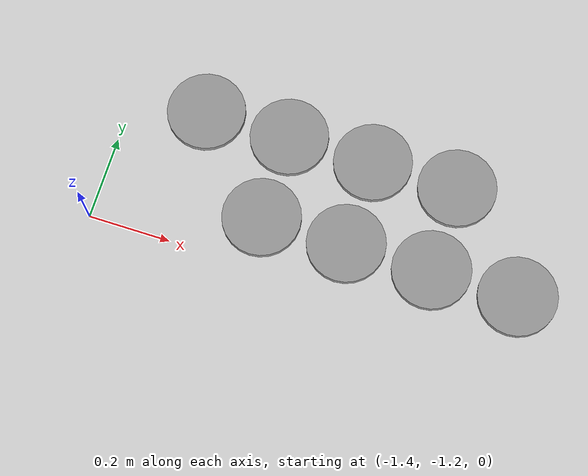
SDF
<sdf version="1.6">
 <world name="default">
  <model name="unit_cylinder_clone_593">
   <pose>-1.22 -0.87 0.008111 0 0 0</pose>
   <link name="link">
    <inertial>
     <mass>1</mass>
     <inertia><ixx>0.145833</ixx><ixy>0</ixy><ixz>0</ixz><iyy>0.145833</iyy><iyz>0</iyz><izz>0.125</izz></inertia>
    </inertial>
    <collision name="collision">
     <geometry><cylinder><radius>0.0950718</radius><length>0.0162339</length></cylinder></geometry>
     <max_contacts>5</max_contacts>
    </collision>
    <visual name="visual">
     <geometry><cylinder><radius>0.0950718</radius><length>0.0162339</length></cylinder></geometry>
     <material>
      <script><name>Gazebo/Grey</name><uri>file://media/materials/scripts/gazebo.material</uri></script>
     </material>
    </visual>
   </link>
  </model>
  <model name="unit_cylinder_clone_597">
   <pose>-1.01 -1.08 0.008111 0 0 0</pose>
   <link name="link">
    <inertial>
     <mass>1</mass>
     <inertia><ixx>0.145833</ixx><ixy>0</ixy><ixz>0</ixz><iyy>0.145833</iyy><iyz>0</iyz><izz>0.125</izz></inertia>
    </inertial>
    <collision name="collision">
     <geometry><cylinder><radius>0.0950718</radius><length>0.0162339</length></cylinder></geometry>
     <max_contacts>5</max_contacts>
    </collision>
    <visual name="visual">
     <geometry><cylinder><radius>0.0950718</radius><length>0.0162339</length></cylinder></geometry>
     <material>
      <script><name>Gazebo/Grey</name><uri>file://media/materials/scripts/gazebo.material</uri></script>
     </material>
    </visual>
   </link>
  </model>
  <model name="unit_cylinder_clone_598">
   <pose>-1.01 -0.87 0.008111 0 0 0</pose>
   <link name="link">
    <inertial>
     <mass>1</mass>
     <inertia><ixx>0.145833</ixx><ixy>0</ixy><ixz>0</ixz><iyy>0.145833</iyy><iyz>0</iyz><izz>0.125</izz></inertia>
    </inertial>
    <collision name="collision">
     <geometry><cylinder><radius>0.0950718</radius><length>0.0162339</length></cylinder></geometry>
     <max_contacts>5</max_contacts>
    </collision>
    <visual name="visual">
     <geometry><cylinder><radius>0.0950718</radius><length>0.0162339</length></cylinder></geometry>
     <material>
      <script><name>Gazebo/Grey</name><uri>file://media/materials/scripts/gazebo.material</uri></script>
     </material>
    </visual>
   </link>
  </model>
  <model name="unit_cylinder_clone_602">
   <pose>-0.8 -1.08 0.008111 0 0 0</pose>
   <link name="link">
    <inertial>
     <mass>1</mass>
     <inertia><ixx>0.145833</ixx><ixy>0</ixy><ixz>0</ixz><iyy>0.145833</iyy><iyz>0</iyz><izz>0.125</izz></inertia>
    </inertial>
    <collision name="collision">
     <geometry><cylinder><radius>0.0950718</radius><length>0.0162339</length></cylinder></geometry>
     <max_contacts>5</max_contacts>
    </collision>
    <visual name="visual">
     <geometry><cylinder><radius>0.0950718</radius><length>0.0162339</length></cylinder></geometry>
     <material>
      <script><name>Gazebo/Grey</name><uri>file://media/materials/scripts/gazebo.material</uri></script>
     </material>
    </visual>
   </link>
  </model>
  <model name="unit_cylinder_clone_603">
   <pose>-0.8 -0.87 0.008111 0 0 0</pose>
   <link name="link">
    <inertial>
     <mass>1</mass>
     <inertia><ixx>0.145833</ixx><ixy>0</ixy><ixz>0</ixz><iyy>0.145833</iyy><iyz>0</iyz><izz>0.125</izz></inertia>
    </inertial>
    <collision name="collision">
     <geometry><cylinder><radius>0.0950718</radius><length>0.0162339</length></cylinder></geometry>
     <max_contacts>5</max_contacts>
    </collision>
    <visual name="visual">
     <geometry><cylinder><radius>0.0950718</radius><length>0.0162339</length></cylinder></geometry>
     <material>
      <script><name>Gazebo/Grey</name><uri>file://media/materials/scripts/gazebo.material</uri></script>
     </material>
    </visual>
   </link>
  </model>
  <model name="unit_cylinder_clone_607">
   <pose>-0.59 -1.08 0.008111 0 0 0</pose>
   <link name="link">
    <inertial>
     <mass>1</mass>
     <inertia><ixx>0.145833</ixx><ixy>0</ixy><ixz>0</ixz><iyy>0.145833</iyy><iyz>0</iyz><izz>0.125</izz></inertia>
    </inertial>
    <collision name="collision">
     <geometry><cylinder><radius>0.0950718</radius><length>0.0162339</length></cylinder></geometry>
     <max_contacts>5</max_contacts>
    </collision>
    <visual name="visual">
     <geometry><cylinder><radius>0.0950718</radius><length>0.0162339</length></cylinder></geometry>
     <material>
      <script><name>Gazebo/Grey</name><uri>file://media/materials/scripts/gazebo.material</uri></script>
     </material>
    </visual>
   </link>
  </model>
  <model name="unit_cylinder_clone_608">
   <pose>-0.59 -0.87 0.008111 0 0 0</pose>
   <link name="link">
    <inertial>
     <mass>1</mass>
     <inertia><ixx>0.145833</ixx><ixy>0</ixy><ixz>0</ixz><iyy>0.145833</iyy><iyz>0</iyz><izz>0.125</izz></inertia>
    </inertial>
    <collision name="collision">
     <geometry><cylinder><radius>0.0950718</radius><length>0.0162339</length></cylinder></geometry>
     <max_contacts>5</max_contacts>
    </collision>
    <visual name="visual">
     <geometry><cylinder><radius>0.0950718</radius><length>0.0162339</length></cylinder></geometry>
     <material>
      <script><name>Gazebo/Grey</name><uri>file://media/materials/scripts/gazebo.material</uri></script>
     </material>
    </visual>
   </link>
  </model>
  <model name="unit_cylinder_clone_612">
   <pose>-0.38 -1.08 0.008111 0 0 0</pose>
   <link name="link">
    <inertial>
     <mass>1</mass>
     <inertia><ixx>0.145833</ixx><ixy>0</ixy><ixz>0</ixz><iyy>0.145833</iyy><iyz>0</iyz><izz>0.125</izz></inertia>
    </inertial>
    <collision name="collision">
     <geometry><cylinder><radius>0.0950718</radius><length>0.0162339</length></cylinder></geometry>
     <max_contacts>5</max_contacts>
    </collision>
    <visual name="visual">
     <geometry><cylinder><radius>0.0950718</radius><length>0.0162339</length></cylinder></geometry>
     <material>
      <script><name>Gazebo/Grey</name><uri>file://media/materials/scripts/gazebo.material</uri></script>
     </material>
    </visual>
   </link>
  </model>
 </world>
</sdf>
